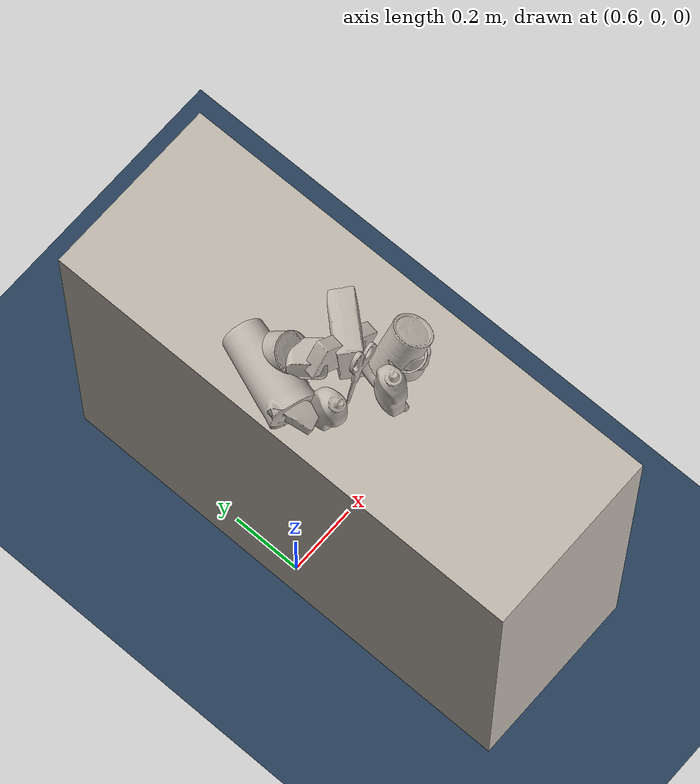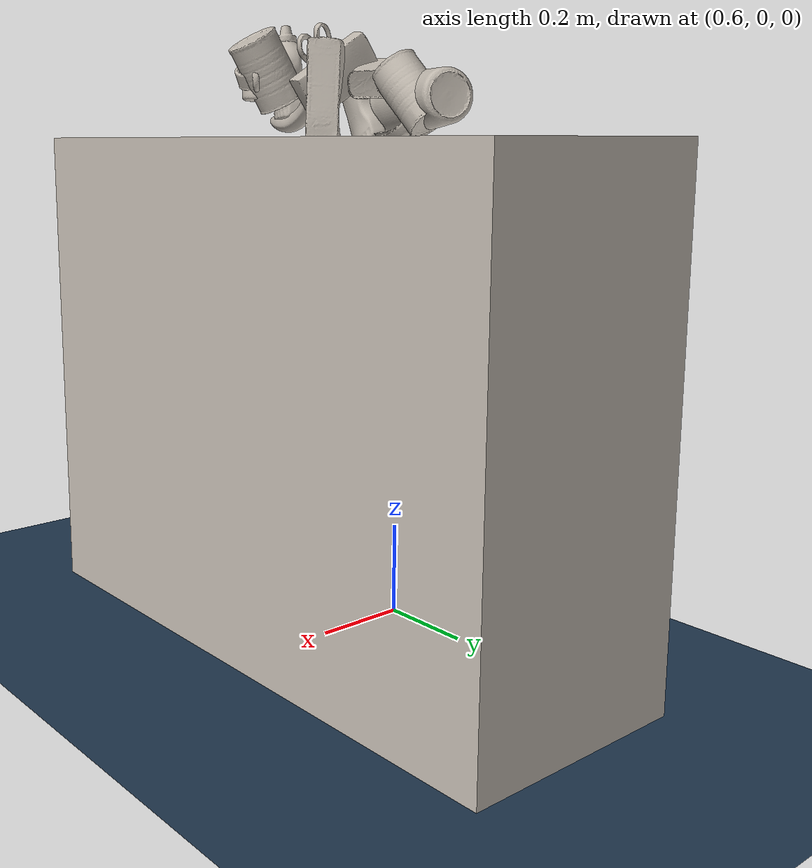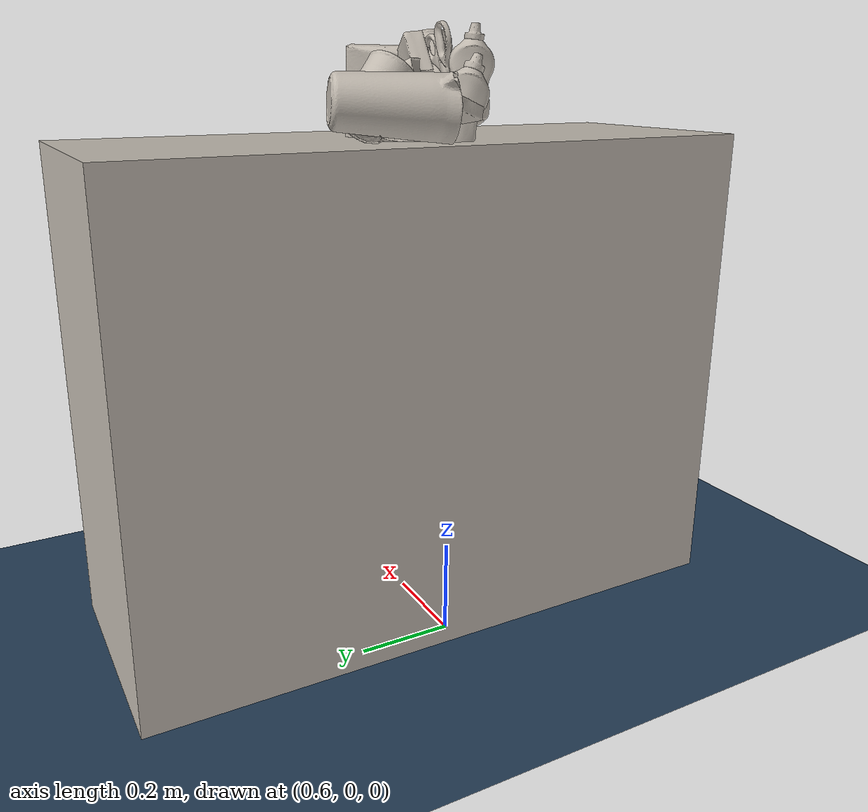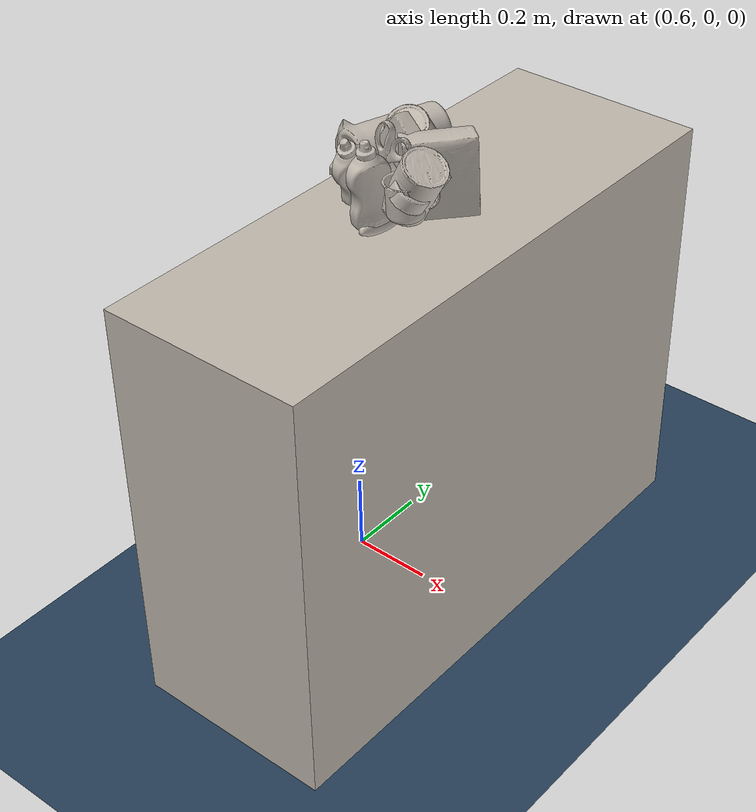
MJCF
<mujoco model="World">

  <compiler angle="radian" balanceinertia="true" inertiafromgeom="true" meshdir="/home/pracsys/GraspClutter6D_local" texturedir="/home/pracsys/GraspClutter6D_local" autolimits="true" />

  <option integrator="Euler" cone="elliptic" solver="CG" noslip_iterations="2">
    <flag warmstart="disable" multiccd="enable" />
  </option>

  <default>
    <geom density="10" />
  </default>

  <asset>

    <texture type="skybox" builtin="flat" rgb1="1 1 1" rgb2="0 0 0" width="512" height="512" />
    <texture name="grid" type="2d" builtin="checker" width="512" height="512" rgb1=".1 .2 .3" rgb2=".2 .3 .4" />
    <material name="grid" texture="grid" texrepeat="2 2" texuniform="true" specular="0" shininess="0" reflectance="0" emission="1" />

    <texture file="models/rs_table/ceramic.png" type="cube" name="tex-ceramic" />
    <material name="table_ceramic" reflectance="0.0" shininess="0.0" specular="0.2" texrepeat="1 1" texture="tex-ceramic" />
  <texture name="obj_000001_0_tex" type="2d" file="models_obj_m/obj_000001/obj_000001.png" /><material name="obj_000001_0_mat" texture="obj_000001_0_tex" specular="1.0" shininess="0.0" /><mesh name="obj_000001_0_vis" file="models_obj_m/obj_000001/obj_000001.obj" /><mesh name="obj_000001_0_obj_000001_collision_0" file="models_obj_m/obj_000001/obj_000001_collision_0.obj" /><mesh name="obj_000001_0_obj_000001_collision_1" file="models_obj_m/obj_000001/obj_000001_collision_1.obj" /><mesh name="obj_000001_0_obj_000001_collision_2" file="models_obj_m/obj_000001/obj_000001_collision_2.obj" /><mesh name="obj_000001_0_obj_000001_collision_3" file="models_obj_m/obj_000001/obj_000001_collision_3.obj" /><texture name="obj_000001_1_tex" type="2d" file="models_obj_m/obj_000001/obj_000001.png" /><material name="obj_000001_1_mat" texture="obj_000001_1_tex" specular="1.0" shininess="0.0" /><mesh name="obj_000001_1_vis" file="models_obj_m/obj_000001/obj_000001.obj" /><mesh name="obj_000001_1_obj_000001_collision_0" file="models_obj_m/obj_000001/obj_000001_collision_0.obj" /><mesh name="obj_000001_1_obj_000001_collision_1" file="models_obj_m/obj_000001/obj_000001_collision_1.obj" /><mesh name="obj_000001_1_obj_000001_collision_2" file="models_obj_m/obj_000001/obj_000001_collision_2.obj" /><mesh name="obj_000001_1_obj_000001_collision_3" file="models_obj_m/obj_000001/obj_000001_collision_3.obj" /><texture name="obj_000002_0_tex" type="2d" file="models_obj_m/obj_000002/obj_000002.png" /><material name="obj_000002_0_mat" texture="obj_000002_0_tex" specular="1.0" shininess="0.0" /><mesh name="obj_000002_0_vis" file="models_obj_m/obj_000002/obj_000002.obj" /><mesh name="obj_000002_0_obj_000002_collision_0" file="models_obj_m/obj_000002/obj_000002_collision_0.obj" /><mesh name="obj_000002_0_obj_000002_collision_1" file="models_obj_m/obj_000002/obj_000002_collision_1.obj" /><mesh name="obj_000002_0_obj_000002_collision_2" file="models_obj_m/obj_000002/obj_000002_collision_2.obj" /><mesh name="obj_000002_0_obj_000002_collision_3" file="models_obj_m/obj_000002/obj_000002_collision_3.obj" /><mesh name="obj_000002_0_obj_000002_collision_4" file="models_obj_m/obj_000002/obj_000002_collision_4.obj" /><mesh name="obj_000002_0_obj_000002_collision_5" file="models_obj_m/obj_000002/obj_000002_collision_5.obj" /><mesh name="obj_000002_0_obj_000002_collision_6" file="models_obj_m/obj_000002/obj_000002_collision_6.obj" /><mesh name="obj_000002_0_obj_000002_collision_7" file="models_obj_m/obj_000002/obj_000002_collision_7.obj" /><mesh name="obj_000002_0_obj_000002_collision_8" file="models_obj_m/obj_000002/obj_000002_collision_8.obj" /><mesh name="obj_000002_0_obj_000002_collision_9" file="models_obj_m/obj_000002/obj_000002_collision_9.obj" /><mesh name="obj_000002_0_obj_000002_collision_10" file="models_obj_m/obj_000002/obj_000002_collision_10.obj" /><mesh name="obj_000002_0_obj_000002_collision_11" file="models_obj_m/obj_000002/obj_000002_collision_11.obj" /><texture name="obj_000003_0_tex" type="2d" file="models_obj_m/obj_000003/obj_000003.png" /><material name="obj_000003_0_mat" texture="obj_000003_0_tex" specular="1.0" shininess="0.0" /><mesh name="obj_000003_0_vis" file="models_obj_m/obj_000003/obj_000003.obj" /><mesh name="obj_000003_0_obj_000003_collision_0" file="models_obj_m/obj_000003/obj_000003_collision_0.obj" /><mesh name="obj_000003_0_obj_000003_collision_1" file="models_obj_m/obj_000003/obj_000003_collision_1.obj" /><texture name="obj_000005_0_tex" type="2d" file="models_obj_m/obj_000005/obj_000005.png" /><material name="obj_000005_0_mat" texture="obj_000005_0_tex" specular="1.0" shininess="0.0" /><mesh name="obj_000005_0_vis" file="models_obj_m/obj_000005/obj_000005.obj" /><mesh name="obj_000005_0_obj_000005_collision_0" file="models_obj_m/obj_000005/obj_000005_collision_0.obj" /><mesh name="obj_000005_0_obj_000005_collision_1" file="models_obj_m/obj_000005/obj_000005_collision_1.obj" /><mesh name="obj_000005_0_obj_000005_collision_2" file="models_obj_m/obj_000005/obj_000005_collision_2.obj" /><mesh name="obj_000005_0_obj_000005_collision_3" file="models_obj_m/obj_000005/obj_000005_collision_3.obj" /><texture name="obj_000005_1_tex" type="2d" file="models_obj_m/obj_000005/obj_000005.png" /><material name="obj_000005_1_mat" texture="obj_000005_1_tex" specular="1.0" shininess="0.0" /><mesh name="obj_000005_1_vis" file="models_obj_m/obj_000005/obj_000005.obj" /><mesh name="obj_000005_1_obj_000005_collision_0" file="models_obj_m/obj_000005/obj_000005_collision_0.obj" /><mesh name="obj_000005_1_obj_000005_collision_1" file="models_obj_m/obj_000005/obj_000005_collision_1.obj" /><mesh name="obj_000005_1_obj_000005_collision_2" file="models_obj_m/obj_000005/obj_000005_collision_2.obj" /><mesh name="obj_000005_1_obj_000005_collision_3" file="models_obj_m/obj_000005/obj_000005_collision_3.obj" /><texture name="obj_000006_0_tex" type="2d" file="models_obj_m/obj_000006/obj_000006.png" /><material name="obj_000006_0_mat" texture="obj_000006_0_tex" specular="1.0" shininess="0.0" /><mesh name="obj_000006_0_vis" file="models_obj_m/obj_000006/obj_000006.obj" /><mesh name="obj_000006_0_obj_000006_collision_0" file="models_obj_m/obj_000006/obj_000006_collision_0.obj" /><mesh name="obj_000006_0_obj_000006_collision_1" file="models_obj_m/obj_000006/obj_000006_collision_1.obj" /><mesh name="obj_000006_0_obj_000006_collision_2" file="models_obj_m/obj_000006/obj_000006_collision_2.obj" /><mesh name="obj_000006_0_obj_000006_collision_3" file="models_obj_m/obj_000006/obj_000006_collision_3.obj" /><mesh name="obj_000006_0_obj_000006_collision_4" file="models_obj_m/obj_000006/obj_000006_collision_4.obj" /><mesh name="obj_000006_0_obj_000006_collision_5" file="models_obj_m/obj_000006/obj_000006_collision_5.obj" /><mesh name="obj_000006_0_obj_000006_collision_6" file="models_obj_m/obj_000006/obj_000006_collision_6.obj" /><mesh name="obj_000006_0_obj_000006_collision_7" file="models_obj_m/obj_000006/obj_000006_collision_7.obj" /><mesh name="obj_000006_0_obj_000006_collision_8" file="models_obj_m/obj_000006/obj_000006_collision_8.obj" /><mesh name="obj_000006_0_obj_000006_collision_9" file="models_obj_m/obj_000006/obj_000006_collision_9.obj" /><mesh name="obj_000006_0_obj_000006_collision_10" file="models_obj_m/obj_000006/obj_000006_collision_10.obj" /><mesh name="obj_000006_0_obj_000006_collision_11" file="models_obj_m/obj_000006/obj_000006_collision_11.obj" /><mesh name="obj_000006_0_obj_000006_collision_12" file="models_obj_m/obj_000006/obj_000006_collision_12.obj" /><mesh name="obj_000006_0_obj_000006_collision_13" file="models_obj_m/obj_000006/obj_000006_collision_13.obj" /><texture name="obj_000008_0_tex" type="2d" file="models_obj_m/obj_000008/obj_000008.png" /><material name="obj_000008_0_mat" texture="obj_000008_0_tex" specular="1.0" shininess="0.0" /><mesh name="obj_000008_0_vis" file="models_obj_m/obj_000008/obj_000008.obj" /><mesh name="obj_000008_0_obj_000008_collision_0" file="models_obj_m/obj_000008/obj_000008_collision_0.obj" /><mesh name="obj_000008_0_obj_000008_collision_1" file="models_obj_m/obj_000008/obj_000008_collision_1.obj" /><texture name="obj_000009_0_tex" type="2d" file="models_obj_m/obj_000009/obj_000010.png" /><material name="obj_000009_0_mat" texture="obj_000009_0_tex" specular="1.0" shininess="0.0" /><mesh name="obj_000009_0_vis" file="models_obj_m/obj_000009/obj_000009.obj" /><mesh name="obj_000009_0_obj_000009_collision_0" file="models_obj_m/obj_000009/obj_000009_collision_0.obj" /><mesh name="obj_000009_0_obj_000009_collision_1" file="models_obj_m/obj_000009/obj_000009_collision_1.obj" /><mesh name="obj_000009_0_obj_000009_collision_2" file="models_obj_m/obj_000009/obj_000009_collision_2.obj" /><mesh name="obj_000009_0_obj_000009_collision_3" file="models_obj_m/obj_000009/obj_000009_collision_3.obj" /><mesh name="obj_000009_0_obj_000009_collision_4" file="models_obj_m/obj_000009/obj_000009_collision_4.obj" /><mesh name="obj_000009_0_obj_000009_collision_5" file="models_obj_m/obj_000009/obj_000009_collision_5.obj" /><mesh name="obj_000009_0_obj_000009_collision_6" file="models_obj_m/obj_000009/obj_000009_collision_6.obj" /><mesh name="obj_000009_0_obj_000009_collision_7" file="models_obj_m/obj_000009/obj_000009_collision_7.obj" /><mesh name="obj_000009_0_obj_000009_collision_8" file="models_obj_m/obj_000009/obj_000009_collision_8.obj" /><mesh name="obj_000009_0_obj_000009_collision_9" file="models_obj_m/obj_000009/obj_000009_collision_9.obj" /><mesh name="obj_000009_0_obj_000009_collision_10" file="models_obj_m/obj_000009/obj_000009_collision_10.obj" /><mesh name="obj_000009_0_obj_000009_collision_11" file="models_obj_m/obj_000009/obj_000009_collision_11.obj" /><mesh name="obj_000009_0_obj_000009_collision_12" file="models_obj_m/obj_000009/obj_000009_collision_12.obj" /><mesh name="obj_000009_0_obj_000009_collision_13" file="models_obj_m/obj_000009/obj_000009_collision_13.obj" /><mesh name="obj_000009_0_obj_000009_collision_14" file="models_obj_m/obj_000009/obj_000009_collision_14.obj" /><mesh name="obj_000009_0_obj_000009_collision_15" file="models_obj_m/obj_000009/obj_000009_collision_15.obj" /><mesh name="obj_000009_0_obj_000009_collision_16" file="models_obj_m/obj_000009/obj_000009_collision_16.obj" /><mesh name="obj_000009_0_obj_000009_collision_17" file="models_obj_m/obj_000009/obj_000009_collision_17.obj" /><mesh name="obj_000009_0_obj_000009_collision_18" file="models_obj_m/obj_000009/obj_000009_collision_18.obj" /><mesh name="obj_000009_0_obj_000009_collision_19" file="models_obj_m/obj_000009/obj_000009_collision_19.obj" /><texture name="obj_000010_0_tex" type="2d" file="models_obj_m/obj_000010/obj_000011.png" /><material name="obj_000010_0_mat" texture="obj_000010_0_tex" specular="1.0" shininess="0.0" /><mesh name="obj_000010_0_vis" file="models_obj_m/obj_000010/obj_000010.obj" /><mesh name="obj_000010_0_obj_000010_collision_0" file="models_obj_m/obj_000010/obj_000010_collision_0.obj" /><mesh name="obj_000010_0_obj_000010_collision_1" file="models_obj_m/obj_000010/obj_000010_collision_1.obj" /><texture name="obj_000011_0_tex" type="2d" file="models_obj_m/obj_000011/obj_000011.png" /><material name="obj_000011_0_mat" texture="obj_000011_0_tex" specular="1.0" shininess="0.0" /><mesh name="obj_000011_0_vis" file="models_obj_m/obj_000011/obj_000011.obj" /><mesh name="obj_000011_0_obj_000011_collision_0" file="models_obj_m/obj_000011/obj_000011_collision_0.obj" /><mesh name="obj_000011_0_obj_000011_collision_1" file="models_obj_m/obj_000011/obj_000011_collision_1.obj" /><texture name="obj_000014_0_tex" type="2d" file="models_obj_m/obj_000014/obj_000014.png" /><material name="obj_000014_0_mat" texture="obj_000014_0_tex" specular="1.0" shininess="0.0" /><mesh name="obj_000014_0_vis" file="models_obj_m/obj_000014/obj_000014.obj" /><mesh name="obj_000014_0_obj_000014_collision_0" file="models_obj_m/obj_000014/obj_000014_collision_0.obj" /><mesh name="obj_000014_0_obj_000014_collision_1" file="models_obj_m/obj_000014/obj_000014_collision_1.obj" /><mesh name="obj_000014_0_obj_000014_collision_2" file="models_obj_m/obj_000014/obj_000014_collision_2.obj" /><mesh name="obj_000014_0_obj_000014_collision_3" file="models_obj_m/obj_000014/obj_000014_collision_3.obj" /><mesh name="obj_000014_0_obj_000014_collision_4" file="models_obj_m/obj_000014/obj_000014_collision_4.obj" /><mesh name="obj_000014_0_obj_000014_collision_5" file="models_obj_m/obj_000014/obj_000014_collision_5.obj" /><mesh name="obj_000014_0_obj_000014_collision_6" file="models_obj_m/obj_000014/obj_000014_collision_6.obj" /><mesh name="obj_000014_0_obj_000014_collision_7" file="models_obj_m/obj_000014/obj_000014_collision_7.obj" /><mesh name="obj_000014_0_obj_000014_collision_8" file="models_obj_m/obj_000014/obj_000014_collision_8.obj" /><mesh name="obj_000014_0_obj_000014_collision_9" file="models_obj_m/obj_000014/obj_000014_collision_9.obj" /><mesh name="obj_000014_0_obj_000014_collision_10" file="models_obj_m/obj_000014/obj_000014_collision_10.obj" /><mesh name="obj_000014_0_obj_000014_collision_11" file="models_obj_m/obj_000014/obj_000014_collision_11.obj" /><mesh name="obj_000014_0_obj_000014_collision_12" file="models_obj_m/obj_000014/obj_000014_collision_12.obj" /><mesh name="obj_000014_0_obj_000014_collision_13" file="models_obj_m/obj_000014/obj_000014_collision_13.obj" /><mesh name="obj_000014_0_obj_000014_collision_14" file="models_obj_m/obj_000014/obj_000014_collision_14.obj" /><mesh name="obj_000014_0_obj_000014_collision_15" file="models_obj_m/obj_000014/obj_000014_collision_15.obj" /><mesh name="obj_000014_0_obj_000014_collision_16" file="models_obj_m/obj_000014/obj_000014_collision_16.obj" /><mesh name="obj_000014_0_obj_000014_collision_17" file="models_obj_m/obj_000014/obj_000014_collision_17.obj" /><mesh name="obj_000014_0_obj_000014_collision_18" file="models_obj_m/obj_000014/obj_000014_collision_18.obj" /><mesh name="obj_000014_0_obj_000014_collision_19" file="models_obj_m/obj_000014/obj_000014_collision_19.obj" /><mesh name="obj_000014_0_obj_000014_collision_20" file="models_obj_m/obj_000014/obj_000014_collision_20.obj" /><mesh name="obj_000014_0_obj_000014_collision_21" file="models_obj_m/obj_000014/obj_000014_collision_21.obj" /><mesh name="obj_000014_0_obj_000014_collision_22" file="models_obj_m/obj_000014/obj_000014_collision_22.obj" /><mesh name="obj_000014_0_obj_000014_collision_23" file="models_obj_m/obj_000014/obj_000014_collision_23.obj" /><mesh name="obj_000014_0_obj_000014_collision_24" file="models_obj_m/obj_000014/obj_000014_collision_24.obj" /><mesh name="obj_000014_0_obj_000014_collision_25" file="models_obj_m/obj_000014/obj_000014_collision_25.obj" /><mesh name="obj_000014_0_obj_000014_collision_26" file="models_obj_m/obj_000014/obj_000014_collision_26.obj" /><mesh name="obj_000014_0_obj_000014_collision_27" file="models_obj_m/obj_000014/obj_000014_collision_27.obj" /><mesh name="obj_000014_0_obj_000014_collision_28" file="models_obj_m/obj_000014/obj_000014_collision_28.obj" /><mesh name="obj_000014_0_obj_000014_collision_29" file="models_obj_m/obj_000014/obj_000014_collision_29.obj" /><mesh name="obj_000014_0_obj_000014_collision_30" file="models_obj_m/obj_000014/obj_000014_collision_30.obj" /><mesh name="obj_000014_0_obj_000014_collision_31" file="models_obj_m/obj_000014/obj_000014_collision_31.obj" /><mesh name="obj_000014_0_obj_000014_collision_32" file="models_obj_m/obj_000014/obj_000014_collision_32.obj" /><mesh name="obj_000014_0_obj_000014_collision_33" file="models_obj_m/obj_000014/obj_000014_collision_33.obj" /><mesh name="obj_000014_0_obj_000014_collision_34" file="models_obj_m/obj_000014/obj_000014_collision_34.obj" /><mesh name="obj_000014_0_obj_000014_collision_35" file="models_obj_m/obj_000014/obj_000014_collision_35.obj" /><mesh name="obj_000014_0_obj_000014_collision_36" file="models_obj_m/obj_000014/obj_000014_collision_36.obj" /><mesh name="obj_000014_0_obj_000014_collision_37" file="models_obj_m/obj_000014/obj_000014_collision_37.obj" /><mesh name="obj_000014_0_obj_000014_collision_38" file="models_obj_m/obj_000014/obj_000014_collision_38.obj" /><texture name="obj_000017_0_tex" type="2d" file="models_obj_m/obj_000017/obj_000018.png" /><material name="obj_000017_0_mat" texture="obj_000017_0_tex" specular="1.0" shininess="0.0" /><mesh name="obj_000017_0_vis" file="models_obj_m/obj_000017/obj_000017.obj" /><mesh name="obj_000017_0_obj_000017_collision_0" file="models_obj_m/obj_000017/obj_000017_collision_0.obj" /><mesh name="obj_000017_0_obj_000017_collision_1" file="models_obj_m/obj_000017/obj_000017_collision_1.obj" /><mesh name="obj_000017_0_obj_000017_collision_2" file="models_obj_m/obj_000017/obj_000017_collision_2.obj" /><mesh name="obj_000017_0_obj_000017_collision_3" file="models_obj_m/obj_000017/obj_000017_collision_3.obj" /><mesh name="obj_000017_0_obj_000017_collision_4" file="models_obj_m/obj_000017/obj_000017_collision_4.obj" /><mesh name="obj_000017_0_obj_000017_collision_5" file="models_obj_m/obj_000017/obj_000017_collision_5.obj" /><mesh name="obj_000017_0_obj_000017_collision_6" file="models_obj_m/obj_000017/obj_000017_collision_6.obj" /><mesh name="obj_000017_0_obj_000017_collision_7" file="models_obj_m/obj_000017/obj_000017_collision_7.obj" /><mesh name="obj_000017_0_obj_000017_collision_8" file="models_obj_m/obj_000017/obj_000017_collision_8.obj" /><mesh name="obj_000017_0_obj_000017_collision_9" file="models_obj_m/obj_000017/obj_000017_collision_9.obj" /><mesh name="obj_000017_0_obj_000017_collision_10" file="models_obj_m/obj_000017/obj_000017_collision_10.obj" /><mesh name="obj_000017_0_obj_000017_collision_11" file="models_obj_m/obj_000017/obj_000017_collision_11.obj" /><mesh name="obj_000017_0_obj_000017_collision_12" file="models_obj_m/obj_000017/obj_000017_collision_12.obj" /><mesh name="obj_000017_0_obj_000017_collision_13" file="models_obj_m/obj_000017/obj_000017_collision_13.obj" /><mesh name="obj_000017_0_obj_000017_collision_14" file="models_obj_m/obj_000017/obj_000017_collision_14.obj" /><mesh name="obj_000017_0_obj_000017_collision_15" file="models_obj_m/obj_000017/obj_000017_collision_15.obj" /><mesh name="obj_000017_0_obj_000017_collision_16" file="models_obj_m/obj_000017/obj_000017_collision_16.obj" /><mesh name="obj_000017_0_obj_000017_collision_17" file="models_obj_m/obj_000017/obj_000017_collision_17.obj" /><mesh name="obj_000017_0_obj_000017_collision_18" file="models_obj_m/obj_000017/obj_000017_collision_18.obj" /><mesh name="obj_000017_0_obj_000017_collision_19" file="models_obj_m/obj_000017/obj_000017_collision_19.obj" /><mesh name="obj_000017_0_obj_000017_collision_20" file="models_obj_m/obj_000017/obj_000017_collision_20.obj" /><mesh name="obj_000017_0_obj_000017_collision_21" file="models_obj_m/obj_000017/obj_000017_collision_21.obj" /><mesh name="obj_000017_0_obj_000017_collision_22" file="models_obj_m/obj_000017/obj_000017_collision_22.obj" /><mesh name="obj_000017_0_obj_000017_collision_23" file="models_obj_m/obj_000017/obj_000017_collision_23.obj" /><mesh name="obj_000017_0_obj_000017_collision_24" file="models_obj_m/obj_000017/obj_000017_collision_24.obj" /><mesh name="obj_000017_0_obj_000017_collision_25" file="models_obj_m/obj_000017/obj_000017_collision_25.obj" /><mesh name="obj_000017_0_obj_000017_collision_26" file="models_obj_m/obj_000017/obj_000017_collision_26.obj" /><mesh name="obj_000017_0_obj_000017_collision_27" file="models_obj_m/obj_000017/obj_000017_collision_27.obj" /></asset>

  <worldbody>
    <geom name="floor" size="2 2 0.05" type="plane" material="grid" condim="3" />
    <light directional="true" pos="-0.5 0.5 3" dir="0 0 -1" castshadow="false" diffuse="1 1 1" />
    <body name="workspace" pos="0.8 0 0">
      <geom name="shelf_bottom" size="0.25 0.68 0.525" pos="0 0 0.525" type="box" material="table_ceramic" />

    </body>
  <body name="obj_000001_0" pos="0.680977765903909 0.12221383684953913 1.1332300585317763" quat="0.7724641849587446 0.2269462080973571 0.27046516376597507 -0.5278665520520297"><joint name="obj_000001_0_joint" type="free" limited="false" actuatorfrclimited="false" /><geom name="obj_000001_0_geom" type="mesh" contype="0" conaffinity="0" group="1" mesh="obj_000001_0_vis" material="obj_000001_0_mat" /><geom type="mesh" contype="3" conaffinity="3" group="3" rgba="0.9088700260871841 0.5571276366315294 0.02905709149002622 1" mesh="obj_000001_0_obj_000001_collision_0" /><geom type="mesh" contype="3" conaffinity="3" group="3" rgba="0.6410593324381463 0.8402607000713928 0.7776918396385317 1" mesh="obj_000001_0_obj_000001_collision_1" /><geom type="mesh" contype="3" conaffinity="3" group="3" rgba="0.7741652165627951 0.3179101861807435 0.21643336209038533 1" mesh="obj_000001_0_obj_000001_collision_2" /><geom type="mesh" contype="3" conaffinity="3" group="3" rgba="0.8899250795032356 0.5115007140285017 0.5329157655053317 1" mesh="obj_000001_0_obj_000001_collision_3" /></body><body name="obj_000001_1" pos="0.8646339814572246 -0.10476185837413851 1.1805459680741246" quat="0.9662907078747983 0.043471505609767994 0.2529038556990413 -0.02078787741449332"><joint name="obj_000001_1_joint" type="free" limited="false" actuatorfrclimited="false" /><geom name="obj_000001_1_geom" type="mesh" contype="0" conaffinity="0" group="1" mesh="obj_000001_1_vis" material="obj_000001_1_mat" /><geom type="mesh" contype="3" conaffinity="3" group="3" rgba="0.9088700260871841 0.5571276366315294 0.02905709149002622 1" mesh="obj_000001_1_obj_000001_collision_0" /><geom type="mesh" contype="3" conaffinity="3" group="3" rgba="0.6410593324381463 0.8402607000713928 0.7776918396385317 1" mesh="obj_000001_1_obj_000001_collision_1" /><geom type="mesh" contype="3" conaffinity="3" group="3" rgba="0.7741652165627951 0.3179101861807435 0.21643336209038533 1" mesh="obj_000001_1_obj_000001_collision_2" /><geom type="mesh" contype="3" conaffinity="3" group="3" rgba="0.8899250795032356 0.5115007140285017 0.5329157655053317 1" mesh="obj_000001_1_obj_000001_collision_3" /></body><body name="obj_000002_0" pos="0.8236390012516996 0.027180218069951398 1.1242766093468037" quat="0.018175035185820018 0.3502156773074319 0.9363786486077532 0.0146175885702118"><joint name="obj_000002_0_joint" type="free" limited="false" actuatorfrclimited="false" /><geom name="obj_000002_0_geom" type="mesh" contype="0" conaffinity="0" group="1" mesh="obj_000002_0_vis" material="obj_000002_0_mat" /><geom type="mesh" contype="3" conaffinity="3" group="3" rgba="0.9306362109825914 0.8330381231198574 0.5807939113573184 1" mesh="obj_000002_0_obj_000002_collision_0" /><geom type="mesh" contype="3" conaffinity="3" group="3" rgba="0.22912688553814242 0.3875596124141527 0.6327362632726903 1" mesh="obj_000002_0_obj_000002_collision_1" /><geom type="mesh" contype="3" conaffinity="3" group="3" rgba="0.5626259340568875 0.06667345172874573 0.9646088448813395 1" mesh="obj_000002_0_obj_000002_collision_2" /><geom type="mesh" contype="3" conaffinity="3" group="3" rgba="0.2846097720774853 0.35893411128232966 0.5389009556396629 1" mesh="obj_000002_0_obj_000002_collision_3" /><geom type="mesh" contype="3" conaffinity="3" group="3" rgba="0.4508218349405261 0.28618698217910077 0.07910182632008134 1" mesh="obj_000002_0_obj_000002_collision_4" /><geom type="mesh" contype="3" conaffinity="3" group="3" rgba="0.9884794335745274 0.515469558330875 0.0707067722442899 1" mesh="obj_000002_0_obj_000002_collision_5" /><geom type="mesh" contype="3" conaffinity="3" group="3" rgba="0.498884402525659 0.4938823346017336 0.12591961447178301 1" mesh="obj_000002_0_obj_000002_collision_6" /><geom type="mesh" contype="3" conaffinity="3" group="3" rgba="0.1950625664278297 0.8240004663666761 0.4881804849656727 1" mesh="obj_000002_0_obj_000002_collision_7" /><geom type="mesh" contype="3" conaffinity="3" group="3" rgba="0.3132936482834743 0.5610004182168095 0.20088818676924047 1" mesh="obj_000002_0_obj_000002_collision_8" /><geom type="mesh" contype="3" conaffinity="3" group="3" rgba="0.13324297406595753 0.30489124850385396 0.8325815622552574 1" mesh="obj_000002_0_obj_000002_collision_9" /><geom type="mesh" contype="3" conaffinity="3" group="3" rgba="0.33502585031452325 0.012724563165045999 0.5652884737523166 1" mesh="obj_000002_0_obj_000002_collision_10" /><geom type="mesh" contype="3" conaffinity="3" group="3" rgba="0.7875683506774841 0.0948782425132162 0.929563921752164 1" mesh="obj_000002_0_obj_000002_collision_11" /></body><body name="obj_000003_0" pos="0.7743400894548381 0.003499280591704665 1.1695799946744034" quat="0.6574186361089555 -0.3887104599279045 -0.2553283032207695 0.592884788819616"><joint name="obj_000003_0_joint" type="free" limited="false" actuatorfrclimited="false" /><geom name="obj_000003_0_geom" type="mesh" contype="0" conaffinity="0" group="1" mesh="obj_000003_0_vis" material="obj_000003_0_mat" /><geom type="mesh" contype="3" conaffinity="3" group="3" rgba="0.522509730671621 0.2757706064801614 0.3354227120316712 1" mesh="obj_000003_0_obj_000003_collision_0" /><geom type="mesh" contype="3" conaffinity="3" group="3" rgba="0.5516880957351997 0.30786775055087157 0.8022185455408283 1" mesh="obj_000003_0_obj_000003_collision_1" /></body><body name="obj_000005_0" pos="0.662236843838387 -0.0571235840922108 1.124099445955978" quat="0.7373866550903094 0.13803459185512307 0.13786061129687155 -0.6466852589930965"><joint name="obj_000005_0_joint" type="free" limited="false" actuatorfrclimited="false" /><geom name="obj_000005_0_geom" type="mesh" contype="0" conaffinity="0" group="1" mesh="obj_000005_0_vis" material="obj_000005_0_mat" /><geom type="mesh" contype="3" conaffinity="3" group="3" rgba="0.7022177830689367 0.5826341853352067 0.8165841864018348 1" mesh="obj_000005_0_obj_000005_collision_0" /><geom type="mesh" contype="3" conaffinity="3" group="3" rgba="0.8850110305129232 0.6858243586259702 0.23668113982222616 1" mesh="obj_000005_0_obj_000005_collision_1" /><geom type="mesh" contype="3" conaffinity="3" group="3" rgba="0.3521162735319521 0.8507480837221914 0.47569448758993216 1" mesh="obj_000005_0_obj_000005_collision_2" /><geom type="mesh" contype="3" conaffinity="3" group="3" rgba="0.9128805975392907 0.1623848974121762 0.6573614293432378 1" mesh="obj_000005_0_obj_000005_collision_3" /></body><body name="obj_000005_1" pos="0.7803043072609959 -0.14728654335042943 1.1800095817917957" quat="0.7255324829467593 0.04718429780379247 0.018895986398659748 -0.6863083854419199"><joint name="obj_000005_1_joint" type="free" limited="false" actuatorfrclimited="false" /><geom name="obj_000005_1_geom" type="mesh" contype="0" conaffinity="0" group="1" mesh="obj_000005_1_vis" material="obj_000005_1_mat" /><geom type="mesh" contype="3" conaffinity="3" group="3" rgba="0.7022177830689367 0.5826341853352067 0.8165841864018348 1" mesh="obj_000005_1_obj_000005_collision_0" /><geom type="mesh" contype="3" conaffinity="3" group="3" rgba="0.8850110305129232 0.6858243586259702 0.23668113982222616 1" mesh="obj_000005_1_obj_000005_collision_1" /><geom type="mesh" contype="3" conaffinity="3" group="3" rgba="0.3521162735319521 0.8507480837221914 0.47569448758993216 1" mesh="obj_000005_1_obj_000005_collision_2" /><geom type="mesh" contype="3" conaffinity="3" group="3" rgba="0.9128805975392907 0.1623848974121762 0.6573614293432378 1" mesh="obj_000005_1_obj_000005_collision_3" /></body><body name="obj_000006_0" pos="0.8729646063268941 -0.12946645127654352 1.1771096818999205" quat="0.20932395714905316 -0.3183927846333852 -0.9093771924776005 0.1668611322579834"><joint name="obj_000006_0_joint" type="free" limited="false" actuatorfrclimited="false" /><geom name="obj_000006_0_geom" type="mesh" contype="0" conaffinity="0" group="1" mesh="obj_000006_0_vis" material="obj_000006_0_mat" /><geom type="mesh" contype="3" conaffinity="3" group="3" rgba="0.2826735963389645 0.3732613789385052 0.7850961502526286 1" mesh="obj_000006_0_obj_000006_collision_0" /><geom type="mesh" contype="3" conaffinity="3" group="3" rgba="0.2778119464286495 0.852700815001951 0.9131251478975895 1" mesh="obj_000006_0_obj_000006_collision_1" /><geom type="mesh" contype="3" conaffinity="3" group="3" rgba="0.8020587813288036 0.3025792521954269 0.26202108232011456 1" mesh="obj_000006_0_obj_000006_collision_2" /><geom type="mesh" contype="3" conaffinity="3" group="3" rgba="0.8749284451958235 0.7193776905239141 0.13458988549502138 1" mesh="obj_000006_0_obj_000006_collision_3" /><geom type="mesh" contype="3" conaffinity="3" group="3" rgba="0.2130188599738736 0.6558868892940936 0.9509039115354172 1" mesh="obj_000006_0_obj_000006_collision_4" /><geom type="mesh" contype="3" conaffinity="3" group="3" rgba="0.7150440817211193 0.6337582813459244 0.5959789356841197 1" mesh="obj_000006_0_obj_000006_collision_5" /><geom type="mesh" contype="3" conaffinity="3" group="3" rgba="0.5914430060148156 0.6397733981720453 0.4770481905761884 1" mesh="obj_000006_0_obj_000006_collision_6" /><geom type="mesh" contype="3" conaffinity="3" group="3" rgba="0.5370695134833949 0.5650036394015392 0.4193565416983073 1" mesh="obj_000006_0_obj_000006_collision_7" /><geom type="mesh" contype="3" conaffinity="3" group="3" rgba="0.45822516380627654 0.5322962868917284 0.22216684784693663 1" mesh="obj_000006_0_obj_000006_collision_8" /><geom type="mesh" contype="3" conaffinity="3" group="3" rgba="0.006992755819853924 0.22617836990136309 0.6404316243166618 1" mesh="obj_000006_0_obj_000006_collision_9" /><geom type="mesh" contype="3" conaffinity="3" group="3" rgba="0.11371882398649225 0.6403057750389807 0.6565213489306491 1" mesh="obj_000006_0_obj_000006_collision_10" /><geom type="mesh" contype="3" conaffinity="3" group="3" rgba="0.5479453169554588 0.8715696065342489 0.8827485230284868 1" mesh="obj_000006_0_obj_000006_collision_11" /><geom type="mesh" contype="3" conaffinity="3" group="3" rgba="0.29639456023491106 0.716942263751537 0.6685544064500213 1" mesh="obj_000006_0_obj_000006_collision_12" /><geom type="mesh" contype="3" conaffinity="3" group="3" rgba="0.24060769408938665 0.11426077536513679 0.6643453630239089 1" mesh="obj_000006_0_obj_000006_collision_13" /></body><body name="obj_000008_0" pos="0.6177354854754681 -0.01242687231507704 1.1125330783765974" quat="0.03053315080388886 -0.1337135534209441 0.1412326484415477 -0.9804293709124169"><joint name="obj_000008_0_joint" type="free" limited="false" actuatorfrclimited="false" /><geom name="obj_000008_0_geom" type="mesh" contype="0" conaffinity="0" group="1" mesh="obj_000008_0_vis" material="obj_000008_0_mat" /><geom type="mesh" contype="3" conaffinity="3" group="3" rgba="0.01671885427652786 0.8783564729505184 0.3287082962157769 1" mesh="obj_000008_0_obj_000008_collision_0" /><geom type="mesh" contype="3" conaffinity="3" group="3" rgba="0.2759906839891276 0.5799351894391934 0.46463070880456725 1" mesh="obj_000008_0_obj_000008_collision_1" /></body><body name="obj_000009_0" pos="0.7092992703857247 0.046885024245404874 1.1660189784940493" quat="0.24468561888099594 0.33156257392849775 0.7589386425279735 0.5041897900201174"><joint name="obj_000009_0_joint" type="free" limited="false" actuatorfrclimited="false" /><geom name="obj_000009_0_geom" type="mesh" contype="0" conaffinity="0" group="1" mesh="obj_000009_0_vis" material="obj_000009_0_mat" /><geom type="mesh" contype="3" conaffinity="3" group="3" rgba="0.4701424646800718 0.15058678152224558 0.03232555140522908 1" mesh="obj_000009_0_obj_000009_collision_0" /><geom type="mesh" contype="3" conaffinity="3" group="3" rgba="0.6334264391293729 0.7000588704139452 0.9101191958261439 1" mesh="obj_000009_0_obj_000009_collision_1" /><geom type="mesh" contype="3" conaffinity="3" group="3" rgba="0.4796571013469104 0.35150290582234567 0.6375226777586448 1" mesh="obj_000009_0_obj_000009_collision_2" /><geom type="mesh" contype="3" conaffinity="3" group="3" rgba="0.8005895298046106 0.9629796370374781 0.317100801488033 1" mesh="obj_000009_0_obj_000009_collision_3" /><geom type="mesh" contype="3" conaffinity="3" group="3" rgba="0.7316817429575484 0.8125950918942385 0.9770420869852225 1" mesh="obj_000009_0_obj_000009_collision_4" /><geom type="mesh" contype="3" conaffinity="3" group="3" rgba="0.027540659115147248 0.9471989066929749 0.9744029211039258 1" mesh="obj_000009_0_obj_000009_collision_5" /><geom type="mesh" contype="3" conaffinity="3" group="3" rgba="0.2468027165587915 0.11355498828593935 0.640482643727051 1" mesh="obj_000009_0_obj_000009_collision_6" /><geom type="mesh" contype="3" conaffinity="3" group="3" rgba="0.26381115444349046 0.5064233410291425 0.06434432684247016 1" mesh="obj_000009_0_obj_000009_collision_7" /><geom type="mesh" contype="3" conaffinity="3" group="3" rgba="0.39104113124687934 0.2576147934487044 0.9823472559836796 1" mesh="obj_000009_0_obj_000009_collision_8" /><geom type="mesh" contype="3" conaffinity="3" group="3" rgba="0.9013360285468692 0.8336454994592718 0.7736518361085535 1" mesh="obj_000009_0_obj_000009_collision_9" /><geom type="mesh" contype="3" conaffinity="3" group="3" rgba="0.5638034510545271 0.2309865979911192 0.056178319664080933 1" mesh="obj_000009_0_obj_000009_collision_10" /><geom type="mesh" contype="3" conaffinity="3" group="3" rgba="0.07539982230460429 0.8840212053523439 0.37940438346802385 1" mesh="obj_000009_0_obj_000009_collision_11" /><geom type="mesh" contype="3" conaffinity="3" group="3" rgba="0.12997684997558534 0.2197119572502484 0.7348773851044048 1" mesh="obj_000009_0_obj_000009_collision_12" /><geom type="mesh" contype="3" conaffinity="3" group="3" rgba="0.4102032814193337 0.31374038786638225 0.9229380645994204 1" mesh="obj_000009_0_obj_000009_collision_13" /><geom type="mesh" contype="3" conaffinity="3" group="3" rgba="0.6775180913271598 0.3730860518815964 0.7560922645576079 1" mesh="obj_000009_0_obj_000009_collision_14" /><geom type="mesh" contype="3" conaffinity="3" group="3" rgba="0.20013413652544576 0.046709010626810876 0.4530831720844085 1" mesh="obj_000009_0_obj_000009_collision_15" /><geom type="mesh" contype="3" conaffinity="3" group="3" rgba="0.997743233778264 0.8720065066436486 0.22893873285390964 1" mesh="obj_000009_0_obj_000009_collision_16" /><geom type="mesh" contype="3" conaffinity="3" group="3" rgba="0.2486444461791405 0.8482398554397806 0.9913239367051718 1" mesh="obj_000009_0_obj_000009_collision_17" /><geom type="mesh" contype="3" conaffinity="3" group="3" rgba="0.8552881572534362 0.878526833870521 0.5714311973878448 1" mesh="obj_000009_0_obj_000009_collision_18" /><geom type="mesh" contype="3" conaffinity="3" group="3" rgba="0.6375258423342278 0.3334964947472784 0.042644175833863374 1" mesh="obj_000009_0_obj_000009_collision_19" /></body><body name="obj_000010_0" pos="0.7991382995076153 -0.10192965562711137 1.1148430586755347" quat="0.7169270779082629 -0.04545747817581305 -0.69275364874231 -0.06357330252575574"><joint name="obj_000010_0_joint" type="free" limited="false" actuatorfrclimited="false" /><geom name="obj_000010_0_geom" type="mesh" contype="0" conaffinity="0" group="1" mesh="obj_000010_0_vis" material="obj_000010_0_mat" /><geom type="mesh" contype="3" conaffinity="3" group="3" rgba="0.8732881017396182 0.3343353395712876 0.08871879557869766 1" mesh="obj_000010_0_obj_000010_collision_0" /><geom type="mesh" contype="3" conaffinity="3" group="3" rgba="0.7768969898522989 0.17302799154634285 0.5980561258489338 1" mesh="obj_000010_0_obj_000010_collision_1" /></body><body name="obj_000011_0" pos="0.6461523414444592 0.10293958368954 1.112835123508083" quat="0.40897152772239526 0.588797329180015 0.4289164315685464 -0.5496277734916564"><joint name="obj_000011_0_joint" type="free" limited="false" actuatorfrclimited="false" /><geom name="obj_000011_0_geom" type="mesh" contype="0" conaffinity="0" group="1" mesh="obj_000011_0_vis" material="obj_000011_0_mat" /><geom type="mesh" contype="3" conaffinity="3" group="3" rgba="0.30507868086283874 0.9701993068122707 0.0021639835779936334 1" mesh="obj_000011_0_obj_000011_collision_0" /><geom type="mesh" contype="3" conaffinity="3" group="3" rgba="0.30046086308937203 0.33184924156596896 0.2382777103232726 1" mesh="obj_000011_0_obj_000011_collision_1" /></body><body name="obj_000014_0" pos="0.8676465842661394 -0.12015388543780603 1.16282707517315" quat="0.9248139846015707 -0.0051429461322354915 -0.021366297739417783 0.3797843141986742"><joint name="obj_000014_0_joint" type="free" limited="false" actuatorfrclimited="false" /><geom name="obj_000014_0_geom" type="mesh" contype="0" conaffinity="0" group="1" mesh="obj_000014_0_vis" material="obj_000014_0_mat" /><geom type="mesh" contype="3" conaffinity="3" group="3" rgba="0.16141368952927726 0.8941132712421812 0.5548749728589505 1" mesh="obj_000014_0_obj_000014_collision_0" /><geom type="mesh" contype="3" conaffinity="3" group="3" rgba="0.8498791440201986 0.5078067392722992 0.18104551223069276 1" mesh="obj_000014_0_obj_000014_collision_1" /><geom type="mesh" contype="3" conaffinity="3" group="3" rgba="0.8943954905161718 0.3968195555274622 0.7506667206413482 1" mesh="obj_000014_0_obj_000014_collision_2" /><geom type="mesh" contype="3" conaffinity="3" group="3" rgba="0.35285466454019054 0.3172969522275877 0.7777097891043925 1" mesh="obj_000014_0_obj_000014_collision_3" /><geom type="mesh" contype="3" conaffinity="3" group="3" rgba="0.6717797492805505 0.27468490709077875 0.17325073818140246 1" mesh="obj_000014_0_obj_000014_collision_4" /><geom type="mesh" contype="3" conaffinity="3" group="3" rgba="0.7947496542642261 0.5505795486049172 0.24523806449691898 1" mesh="obj_000014_0_obj_000014_collision_5" /><geom type="mesh" contype="3" conaffinity="3" group="3" rgba="0.055183469003469154 0.8741690348288653 0.6355782986914638 1" mesh="obj_000014_0_obj_000014_collision_6" /><geom type="mesh" contype="3" conaffinity="3" group="3" rgba="0.13714783929055574 0.9099011487118126 0.046849323318082 1" mesh="obj_000014_0_obj_000014_collision_7" /><geom type="mesh" contype="3" conaffinity="3" group="3" rgba="0.5757321500485043 0.7653495890173662 0.11729263428082792 1" mesh="obj_000014_0_obj_000014_collision_8" /><geom type="mesh" contype="3" conaffinity="3" group="3" rgba="0.04262441774970249 0.20853658483044857 0.1703428205193146 1" mesh="obj_000014_0_obj_000014_collision_9" /><geom type="mesh" contype="3" conaffinity="3" group="3" rgba="0.7540479077019692 0.3915149318812796 0.4429325687742387 1" mesh="obj_000014_0_obj_000014_collision_10" /><geom type="mesh" contype="3" conaffinity="3" group="3" rgba="0.9209908675974051 0.10818362438838003 0.6189688407757469 1" mesh="obj_000014_0_obj_000014_collision_11" /><geom type="mesh" contype="3" conaffinity="3" group="3" rgba="0.8239539038983041 0.963565432161378 0.07680378701257484 1" mesh="obj_000014_0_obj_000014_collision_12" /><geom type="mesh" contype="3" conaffinity="3" group="3" rgba="0.3580527646207692 0.9396191389477992 0.6726680134980254 1" mesh="obj_000014_0_obj_000014_collision_13" /><geom type="mesh" contype="3" conaffinity="3" group="3" rgba="0.3187862019948787 0.842895426167915 0.30383779731684313 1" mesh="obj_000014_0_obj_000014_collision_14" /><geom type="mesh" contype="3" conaffinity="3" group="3" rgba="0.8290415048504837 0.43261520532805775 0.4960423319651849 1" mesh="obj_000014_0_obj_000014_collision_15" /><geom type="mesh" contype="3" conaffinity="3" group="3" rgba="0.47137951977516845 0.7080669244219827 0.5190940947326312 1" mesh="obj_000014_0_obj_000014_collision_16" /><geom type="mesh" contype="3" conaffinity="3" group="3" rgba="0.7270019138804638 0.08558543806348451 0.28134693023649016 1" mesh="obj_000014_0_obj_000014_collision_17" /><geom type="mesh" contype="3" conaffinity="3" group="3" rgba="0.2278750701799056 0.45829465031892036 0.24631126738678388 1" mesh="obj_000014_0_obj_000014_collision_18" /><geom type="mesh" contype="3" conaffinity="3" group="3" rgba="0.8345805016638979 0.20150630993040652 0.5303175522053208 1" mesh="obj_000014_0_obj_000014_collision_19" /><geom type="mesh" contype="3" conaffinity="3" group="3" rgba="0.21449831849224799 0.8815788784779822 0.4946040642073185 1" mesh="obj_000014_0_obj_000014_collision_20" /><geom type="mesh" contype="3" conaffinity="3" group="3" rgba="0.5201983270088316 0.07293896462298644 0.47589207267863676 1" mesh="obj_000014_0_obj_000014_collision_21" /><geom type="mesh" contype="3" conaffinity="3" group="3" rgba="0.6790069105260244 0.05281035932712075 0.8960063801553154 1" mesh="obj_000014_0_obj_000014_collision_22" /><geom type="mesh" contype="3" conaffinity="3" group="3" rgba="0.24152118753827823 0.6713577531353322 0.8759765939813601 1" mesh="obj_000014_0_obj_000014_collision_23" /><geom type="mesh" contype="3" conaffinity="3" group="3" rgba="0.8959852812192273 0.6685148885345674 0.043270461595834475 1" mesh="obj_000014_0_obj_000014_collision_24" /><geom type="mesh" contype="3" conaffinity="3" group="3" rgba="0.9103547626218504 0.037810082392731204 0.32968077117363426 1" mesh="obj_000014_0_obj_000014_collision_25" /><geom type="mesh" contype="3" conaffinity="3" group="3" rgba="0.8924690475590995 0.7858539504025231 0.5314529871560677 1" mesh="obj_000014_0_obj_000014_collision_26" /><geom type="mesh" contype="3" conaffinity="3" group="3" rgba="0.8776507752074951 0.006905611208717133 0.13662201660191675 1" mesh="obj_000014_0_obj_000014_collision_27" /><geom type="mesh" contype="3" conaffinity="3" group="3" rgba="0.8980953270074162 0.5018244752305326 0.015371112777743057 1" mesh="obj_000014_0_obj_000014_collision_28" /><geom type="mesh" contype="3" conaffinity="3" group="3" rgba="0.881652186049792 0.6680883818245129 0.8030035683379387 1" mesh="obj_000014_0_obj_000014_collision_29" /><geom type="mesh" contype="3" conaffinity="3" group="3" rgba="0.9161220339223549 0.8259454248436557 0.32114550413575527 1" mesh="obj_000014_0_obj_000014_collision_30" /><geom type="mesh" contype="3" conaffinity="3" group="3" rgba="0.6740594633112692 0.8978357800705399 0.7541896723125306 1" mesh="obj_000014_0_obj_000014_collision_31" /><geom type="mesh" contype="3" conaffinity="3" group="3" rgba="0.0727347622521074 0.5269632119735216 0.3031843793551897 1" mesh="obj_000014_0_obj_000014_collision_32" /><geom type="mesh" contype="3" conaffinity="3" group="3" rgba="0.42563563790720826 0.5797993794734493 0.5845484997962103 1" mesh="obj_000014_0_obj_000014_collision_33" /><geom type="mesh" contype="3" conaffinity="3" group="3" rgba="0.19592235314761497 0.4231444707325488 0.890859832481569 1" mesh="obj_000014_0_obj_000014_collision_34" /><geom type="mesh" contype="3" conaffinity="3" group="3" rgba="0.9949348150733605 0.608647559429353 0.15322985524005972 1" mesh="obj_000014_0_obj_000014_collision_35" /><geom type="mesh" contype="3" conaffinity="3" group="3" rgba="0.7858454240895385 0.323178255755149 0.9736177117477949 1" mesh="obj_000014_0_obj_000014_collision_36" /><geom type="mesh" contype="3" conaffinity="3" group="3" rgba="0.6648284999313376 0.9703306050755396 0.4425452240435842 1" mesh="obj_000014_0_obj_000014_collision_37" /><geom type="mesh" contype="3" conaffinity="3" group="3" rgba="0.8400435277741224 0.6937273949571666 0.6362434619528645 1" mesh="obj_000014_0_obj_000014_collision_38" /></body><body name="obj_000017_0" pos="0.7654692488823868 -0.06793660504469462 1.174762276889259" quat="0.020034346749962944 0.04172936265347946 -0.6920949740024844 0.7203206454096241"><joint name="obj_000017_0_joint" type="free" limited="false" actuatorfrclimited="false" /><geom name="obj_000017_0_geom" type="mesh" contype="0" conaffinity="0" group="1" mesh="obj_000017_0_vis" material="obj_000017_0_mat" /><geom type="mesh" contype="3" conaffinity="3" group="3" rgba="0.8300607436027256 0.7746450626520026 0.028259677595148802 1" mesh="obj_000017_0_obj_000017_collision_0" /><geom type="mesh" contype="3" conaffinity="3" group="3" rgba="0.8722382693318378 0.7274771061770118 0.3531693377771803 1" mesh="obj_000017_0_obj_000017_collision_1" /><geom type="mesh" contype="3" conaffinity="3" group="3" rgba="0.5980877609329729 0.08964925108942157 0.9827409328247976 1" mesh="obj_000017_0_obj_000017_collision_2" /><geom type="mesh" contype="3" conaffinity="3" group="3" rgba="0.12896852327670105 0.23262496541784183 0.708307388236716 1" mesh="obj_000017_0_obj_000017_collision_3" /><geom type="mesh" contype="3" conaffinity="3" group="3" rgba="0.49139690091838406 0.8926335265499304 0.5725586181467778 1" mesh="obj_000017_0_obj_000017_collision_4" /><geom type="mesh" contype="3" conaffinity="3" group="3" rgba="0.7937783832204612 0.42217433502668733 0.08859246894572148 1" mesh="obj_000017_0_obj_000017_collision_5" /><geom type="mesh" contype="3" conaffinity="3" group="3" rgba="0.31968501261458615 0.055692886468857505 0.13372686667046396 1" mesh="obj_000017_0_obj_000017_collision_6" /><geom type="mesh" contype="3" conaffinity="3" group="3" rgba="0.13222025522357372 0.17526274312101753 0.06896550916264677 1" mesh="obj_000017_0_obj_000017_collision_7" /><geom type="mesh" contype="3" conaffinity="3" group="3" rgba="0.619764861047721 0.6525147311748656 0.1945147804146634 1" mesh="obj_000017_0_obj_000017_collision_8" /><geom type="mesh" contype="3" conaffinity="3" group="3" rgba="0.7542938162430041 0.5932445765901436 0.7103646795954568 1" mesh="obj_000017_0_obj_000017_collision_9" /><geom type="mesh" contype="3" conaffinity="3" group="3" rgba="0.2524389464191312 0.4250197643184034 0.5484201401942239 1" mesh="obj_000017_0_obj_000017_collision_10" /><geom type="mesh" contype="3" conaffinity="3" group="3" rgba="0.12747630615148275 0.8773457669467531 0.2903516195529615 1" mesh="obj_000017_0_obj_000017_collision_11" /><geom type="mesh" contype="3" conaffinity="3" group="3" rgba="0.36705284536176563 0.43857882856348707 0.1921920616144135 1" mesh="obj_000017_0_obj_000017_collision_12" /><geom type="mesh" contype="3" conaffinity="3" group="3" rgba="0.020558595977965055 0.21526825750714773 0.772725517547242 1" mesh="obj_000017_0_obj_000017_collision_13" /><geom type="mesh" contype="3" conaffinity="3" group="3" rgba="0.10547210479742064 0.9890552387987501 0.2674120461420154 1" mesh="obj_000017_0_obj_000017_collision_14" /><geom type="mesh" contype="3" conaffinity="3" group="3" rgba="0.5360270978662599 0.047077211229519134 0.4732059459915734 1" mesh="obj_000017_0_obj_000017_collision_15" /><geom type="mesh" contype="3" conaffinity="3" group="3" rgba="0.32224738434780165 0.15368027561517583 0.33294464645257393 1" mesh="obj_000017_0_obj_000017_collision_16" /><geom type="mesh" contype="3" conaffinity="3" group="3" rgba="0.062153350878422775 0.15503522074777376 0.031107839074490995 1" mesh="obj_000017_0_obj_000017_collision_17" /><geom type="mesh" contype="3" conaffinity="3" group="3" rgba="0.8894341143153127 0.9274654291220618 0.8960713779272304 1" mesh="obj_000017_0_obj_000017_collision_18" /><geom type="mesh" contype="3" conaffinity="3" group="3" rgba="0.6407302652172892 0.7024854384405839 0.8132487939275371 1" mesh="obj_000017_0_obj_000017_collision_19" /><geom type="mesh" contype="3" conaffinity="3" group="3" rgba="0.4219128475173737 0.12864992232644612 0.6362594297911104 1" mesh="obj_000017_0_obj_000017_collision_20" /><geom type="mesh" contype="3" conaffinity="3" group="3" rgba="0.6553489886066428 0.7743604048132783 0.24056368137361295 1" mesh="obj_000017_0_obj_000017_collision_21" /><geom type="mesh" contype="3" conaffinity="3" group="3" rgba="0.0020229106216186343 0.307330070733969 0.17780994515928916 1" mesh="obj_000017_0_obj_000017_collision_22" /><geom type="mesh" contype="3" conaffinity="3" group="3" rgba="0.6179802568288576 0.3727782053738845 0.7596080060713355 1" mesh="obj_000017_0_obj_000017_collision_23" /><geom type="mesh" contype="3" conaffinity="3" group="3" rgba="0.2543795317816884 0.44576637101255845 0.39514403782482055 1" mesh="obj_000017_0_obj_000017_collision_24" /><geom type="mesh" contype="3" conaffinity="3" group="3" rgba="0.1432102771351177 0.4024857781955712 0.7572092015391542 1" mesh="obj_000017_0_obj_000017_collision_25" /><geom type="mesh" contype="3" conaffinity="3" group="3" rgba="0.5090090981373664 0.38439090770599904 0.5322095653024554 1" mesh="obj_000017_0_obj_000017_collision_26" /><geom type="mesh" contype="3" conaffinity="3" group="3" rgba="0.40226807840950896 0.5364817416307209 0.6608784606481888 1" mesh="obj_000017_0_obj_000017_collision_27" /></body></worldbody>

<size memory="64M" /></mujoco>
